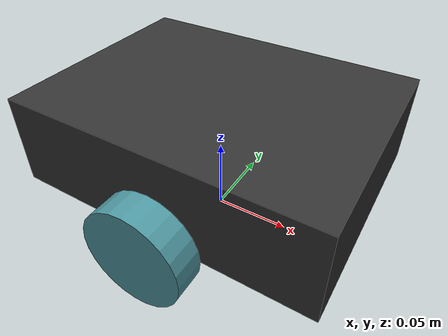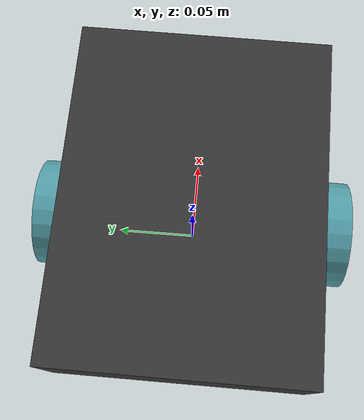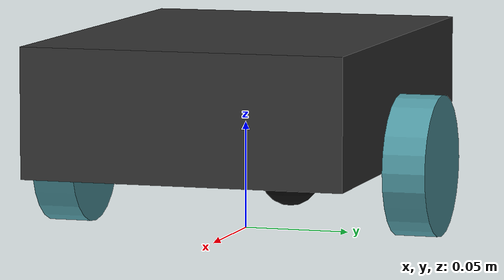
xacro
<?xml version="1.0"?>
<robot xmlns:xacro="http://www.ros.org/wiki/xacro" name="rasper">

  <!-- ============ PROPERTIES ============ -->
  <xacro:property name="chassis_length" value="0.20"/>
  <xacro:property name="chassis_width"  value="0.15"/>
  <xacro:property name="chassis_height" value="0.06"/>
  <xacro:property name="chassis_mass"   value="0.8"/>

  <xacro:property name="wheel_radius"   value="0.033"/>
  <xacro:property name="wheel_width"    value="0.02"/>
  <xacro:property name="wheel_mass"     value="0.05"/>
  <xacro:property name="wheel_offset_y" value="0.085"/>
  <xacro:property name="wheel_offset_x" value="0.0"/>

  <xacro:property name="caster_radius"  value="0.015"/>
  <xacro:property name="caster_mass"    value="0.02"/>

  <!-- ============ MATERIALS ============ -->
  <material name="dark_gray">
    <color rgba="0.2 0.2 0.2 1.0"/>
  </material>
  <material name="teal">
    <color rgba="0.31 0.60 0.64 1.0"/>
  </material>
  <material name="black">
    <color rgba="0.05 0.05 0.05 1.0"/>
  </material>

  <!-- ============ BASE FOOTPRINT (ground plane) ============ -->
  <link name="base_footprint"/>

  <joint name="base_joint" type="fixed">
    <parent link="base_footprint"/>
    <child link="base_link"/>
    <origin xyz="0 0 ${wheel_radius}" rpy="0 0 0"/>
  </joint>

  <!-- ============ BASE LINK (chassis) ============ -->
  <link name="base_link">
    <visual>
      <geometry>
        <box size="${chassis_length} ${chassis_width} ${chassis_height}"/>
      </geometry>
      <origin xyz="0 0 ${chassis_height/2}" rpy="0 0 0"/>
      <material name="dark_gray"/>
    </visual>
    <collision>
      <geometry>
        <box size="${chassis_length} ${chassis_width} ${chassis_height}"/>
      </geometry>
      <origin xyz="0 0 ${chassis_height/2}" rpy="0 0 0"/>
    </collision>
    <inertial>
      <mass value="${chassis_mass}"/>
      <origin xyz="0 0 ${chassis_height/2}" rpy="0 0 0"/>
      <inertia ixx="${(1/12)*chassis_mass*(chassis_width*chassis_width + chassis_height*chassis_height)}"
               ixy="0" ixz="0"
               iyy="${(1/12)*chassis_mass*(chassis_length*chassis_length + chassis_height*chassis_height)}"
               iyz="0"
               izz="${(1/12)*chassis_mass*(chassis_length*chassis_length + chassis_width*chassis_width)}"/>
    </inertial>
  </link>

  <gazebo reference="base_link">
    <material>Gazebo/DarkGrey</material>
  </gazebo>

  <!-- ============ WHEEL MACRO ============ -->
  <xacro:macro name="wheel" params="prefix y_offset">
    <link name="${prefix}_wheel">
      <visual>
        <geometry>
          <cylinder radius="${wheel_radius}" length="${wheel_width}"/>
        </geometry>
        <material name="teal"/>
      </visual>
      <collision>
        <geometry>
          <cylinder radius="${wheel_radius}" length="${wheel_width}"/>
        </geometry>
      </collision>
      <inertial>
        <mass value="${wheel_mass}"/>
        <inertia ixx="${(1/12)*wheel_mass*(3*wheel_radius*wheel_radius + wheel_width*wheel_width)}"
                 ixy="0" ixz="0"
                 iyy="${(1/12)*wheel_mass*(3*wheel_radius*wheel_radius + wheel_width*wheel_width)}"
                 iyz="0"
                 izz="${(1/2)*wheel_mass*wheel_radius*wheel_radius}"/>
      </inertial>
    </link>

    <joint name="${prefix}_wheel_joint" type="continuous">
      <parent link="base_link"/>
      <child link="${prefix}_wheel"/>
      <origin xyz="${wheel_offset_x} ${y_offset} 0" rpy="${-pi/2} 0 0"/>
      <axis xyz="0 0 1"/>
      <dynamics damping="0.01" friction="0.1"/>
    </joint>

    <gazebo reference="${prefix}_wheel">
      <material>Gazebo/TurquoiseDark</material>
      <mu1>1.0</mu1>
      <mu2>1.0</mu2>
    </gazebo>
  </xacro:macro>

  <xacro:wheel prefix="left"  y_offset="${wheel_offset_y}"/>
  <xacro:wheel prefix="right" y_offset="${-wheel_offset_y}"/>

  <!-- ============ CASTER WHEEL ============ -->
  <link name="caster_wheel">
    <visual>
      <geometry>
        <sphere radius="${caster_radius}"/>
      </geometry>
      <material name="black"/>
    </visual>
    <collision>
      <geometry>
        <sphere radius="${caster_radius}"/>
      </geometry>
    </collision>
    <inertial>
      <mass value="${caster_mass}"/>
      <inertia ixx="${(2/5)*caster_mass*caster_radius*caster_radius}"
               ixy="0" ixz="0"
               iyy="${(2/5)*caster_mass*caster_radius*caster_radius}"
               iyz="0"
               izz="${(2/5)*caster_mass*caster_radius*caster_radius}"/>
    </inertial>
  </link>

  <joint name="caster_joint" type="fixed">
    <parent link="base_link"/>
    <child link="caster_wheel"/>
    <origin xyz="${-chassis_length/2 + caster_radius + 0.01} 0 ${-(wheel_radius - caster_radius)}" rpy="0 0 0"/>
  </joint>

  <gazebo reference="caster_wheel">
    <material>Gazebo/Black</material>
    <mu1>0.0</mu1>
    <mu2>0.0</mu2>
  </gazebo>

  <!-- ============ GAZEBO DIFF DRIVE PLUGIN ============ -->
  <gazebo>
    <plugin name="diff_drive" filename="libgazebo_ros_diff_drive.so">
      <ros>
        <namespace>/</namespace>
      </ros>

      <!-- Wheels -->
      <left_joint>left_wheel_joint</left_joint>
      <right_joint>right_wheel_joint</right_joint>

      <!-- Kinematics -->
      <wheel_separation>${2 * wheel_offset_y}</wheel_separation>
      <wheel_diameter>${2 * wheel_radius}</wheel_diameter>

      <!-- Limits -->
      <max_wheel_torque>1.0</max_wheel_torque>
      <max_wheel_acceleration>2.0</max_wheel_acceleration>

      <!-- Input -->
      <command_topic>cmd_vel</command_topic>

      <!-- Output -->
      <publish_odom>true</publish_odom>
      <publish_odom_tf>true</publish_odom_tf>
      <publish_wheel_tf>true</publish_wheel_tf>

      <odometry_topic>odom</odometry_topic>
      <odometry_frame>odom</odometry_frame>
      <robot_base_frame>base_footprint</robot_base_frame>

      <update_rate>30.0</update_rate>
    </plugin>
  </gazebo>

</robot>
